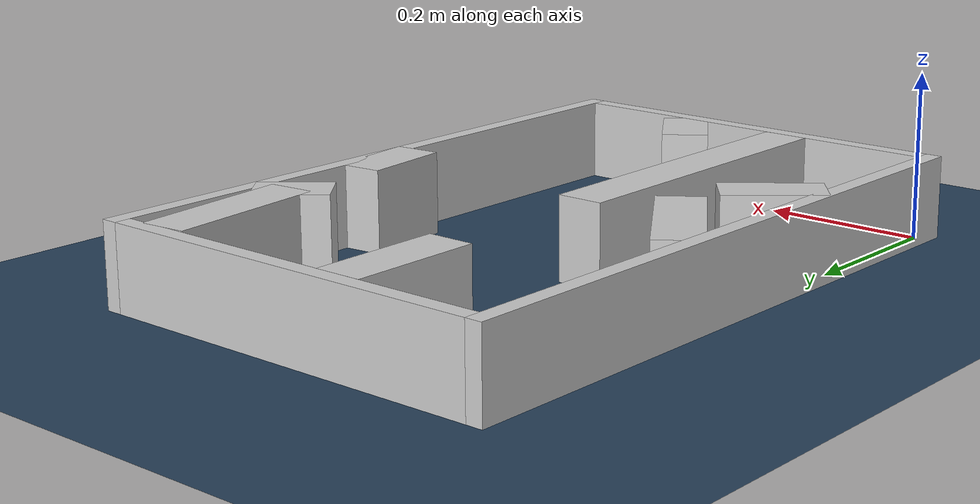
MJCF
<?xml version="1.0" ?>
<mujoco model="generated_real_template">
  <compiler angle="degree"/>
  <option timestep="0.002" integrator="implicitfast" iterations="100" cone="elliptic"/>
  <default>
    <geom density="1"/>
  </default>
  <asset>
    <texture builtin="gradient" height="3072" rgb1="0.3 0.5 0.7" rgb2="0 0 0" type="skybox" width="512"/>
    <texture builtin="checker" height="300" mark="edge" markrgb="0.8 0.8 0.8" name="groundplane" rgb1="0.2 0.3 0.4" rgb2="0.1 0.2 0.3" type="2d" width="300"/>
    <material name="groundplane" reflectance="0.2" texrepeat="5 5" texture="groundplane" texuniform="true"/>
  </asset>
  <worldbody>
    <light dir="0 0 -1" directional="true" pos="0 0 1.5"/>
    <geom name="floor" type="plane" condim="4" friction="0.5 0.005 0.001" material="groundplane" size="0 0 0.05"/>
    <body name="walls">
      <geom name="wall_boundary_left" type="box" condim="4" friction="1.0 0.005 0.0001" rgba="0.8 0.8 0.8 1" pos="-0.010000 0.387500 0.050000" euler="0 0 0.000000" size="0.010000 0.407500 0.050000"/>
      <geom name="wall_boundary_right" type="box" condim="4" friction="1.0 0.005 0.0001" rgba="0.8 0.8 0.8 1" pos="0.500000 0.387500 0.050000" euler="0 0 0.000000" size="0.010000 0.407500 0.050000"/>
      <geom name="wall_boundary_bottom" type="box" condim="4" friction="1.0 0.005 0.0001" rgba="0.8 0.8 0.8 1" pos="0.245000 -0.010000 0.050000" euler="0 0 0.000000" size="0.245000 0.010000 0.050000"/>
      <geom name="wall_boundary_top" type="box" condim="4" friction="1.0 0.005 0.0001" rgba="0.8 0.8 0.8 1" pos="0.245000 0.785000 0.050000" euler="0 0 0.000000" size="0.245000 0.010000 0.050000"/>
      <geom name="wall_inner_1_1" type="box" condim="4" friction="1.0 0.005 0.0001" rgba="0.8 0.8 0.8 1" pos="0.046566 0.240094 0.050000" euler="0 0 39.664493" size="0.060492 0.028500 0.050000"/>
      <geom name="wall_inner_1_2" type="box" condim="4" friction="1.0 0.005 0.0001" rgba="0.8 0.8 0.8 1" pos="0.455468 0.579142 0.050000" euler="0 0 39.664493" size="0.044859 0.028500 0.050000"/>
      <geom name="wall_inner_2_1" type="box" condim="4" friction="1.0 0.005 0.0001" rgba="0.8 0.8 0.8 1" pos="0.184679 0.205239 0.050000" euler="0 0 90.388140" size="0.205244 0.028500 0.050000"/>
      <geom name="wall_inner_2_2" type="box" condim="4" friction="1.0 0.005 0.0001" rgba="0.8 0.8 0.8 1" pos="0.181356 0.695763 0.050000" euler="0 0 90.388140" size="0.079239 0.028500 0.050000"/>
      <geom name="wall_inner_3_1" type="box" condim="4" friction="1.0 0.005 0.0001" rgba="0.8 0.8 0.8 1" pos="0.475992 0.407524 0.050000" euler="0 0 95.818915" size="0.055762 0.028500 0.050000"/>
      <geom name="wall_inner_3_2" type="box" condim="4" friction="1.0 0.005 0.0001" rgba="0.8 0.8 0.8 1" pos="0.448600 0.676312 0.050000" euler="0 0 95.818915" size="0.099200 0.028500 0.050000"/>
      <geom name="wall_inner_4_1" type="box" condim="4" friction="1.0 0.005 0.0001" rgba="0.8 0.8 0.8 1" pos="0.054393 0.403013 0.050000" euler="0 0 -54.732143" size="0.088540 0.028500 0.050000"/>
      <geom name="wall_inner_4_2" type="box" condim="4" friction="1.0 0.005 0.0001" rgba="0.8 0.8 0.8 1" pos="0.310974 0.040199 0.050000" euler="0 0 -54.732143" size="0.049235 0.028500 0.050000"/>
    </body>
  </worldbody>
</mujoco>
